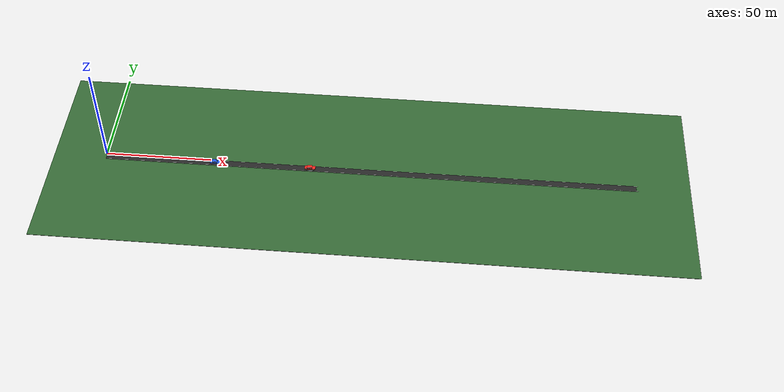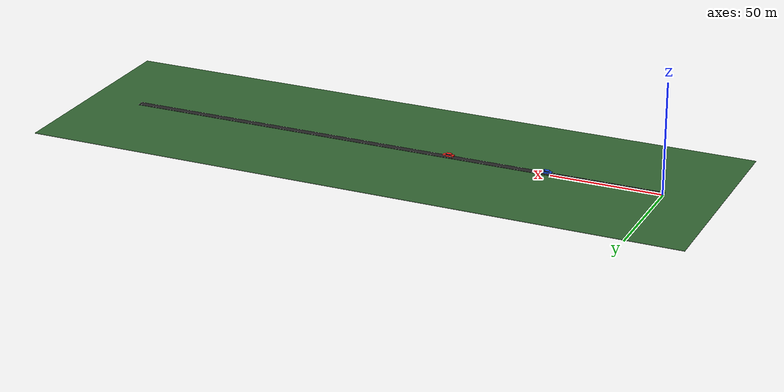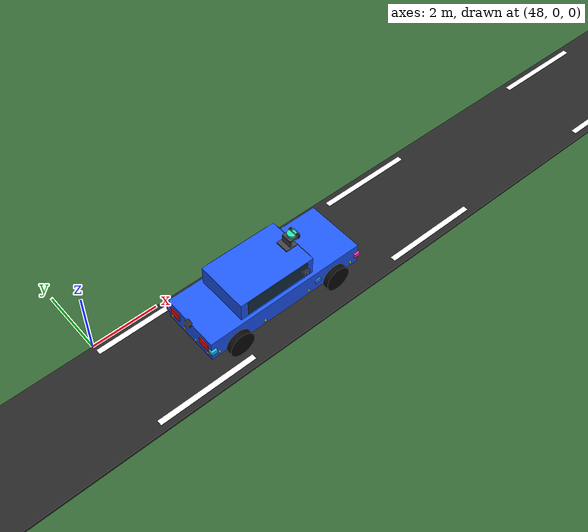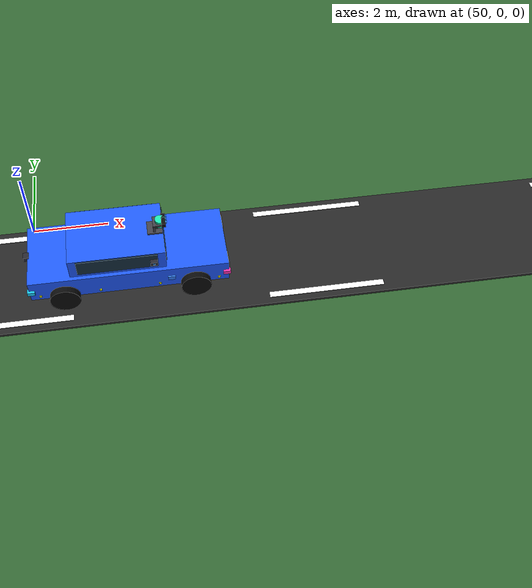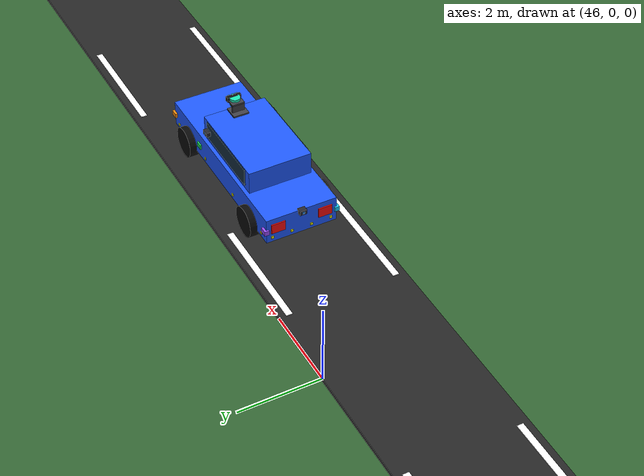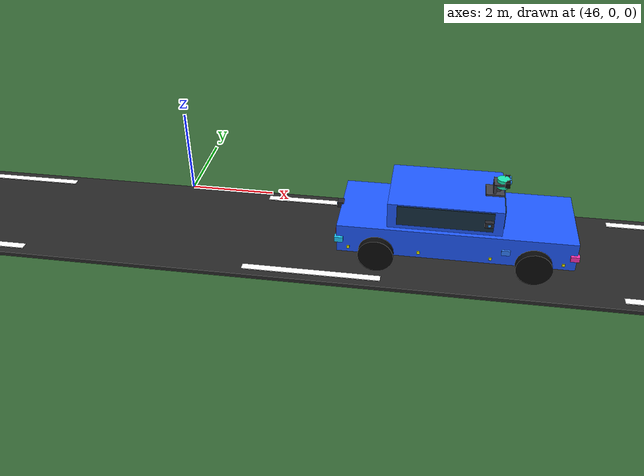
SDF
<?xml version='1.0' encoding='utf-8'?>
<sdf version="1.9">
  <world name="cosim_demo">
    <gravity>0 0 0</gravity>
    <physics name="default" type="ignored">
      <max_step_size>0.01</max_step_size>
      <real_time_factor>0</real_time_factor>
    </physics>
    <plugin filename="gz-sim-physics-system" name="gz::sim::systems::Physics" />
    <plugin filename="gz-sim-user-commands-system" name="gz::sim::systems::UserCommands" />
    <plugin filename="gz-sim-scene-broadcaster-system" name="gz::sim::systems::SceneBroadcaster" />
    <plugin filename="libcosim_sensor_render_sync.so" name="SensorRenderSync" />
    <plugin filename="gz-sim-sensors-system" name="gz::sim::systems::Sensors"><render_engine>ogre2</render_engine></plugin>
    <light name="sun" type="directional">
      <pose>0 0 20 0 0 0</pose>
      <diffuse>0.9 0.9 0.9 1</diffuse>
      <direction>-0.3 -0.4 -1</direction>
    </light>
    <model name="road">
      <static>true</static>
      <link name="visuals">
        <visual name="grass">
          <pose>125 -1.6 -0.2 0 0 0</pose>
          <geometry>
            <box>
              <size>300 100 0.2</size>
            </box>
          </geometry>
          <material>
            <ambient>0.2 0.4 0.2 1</ambient>
            <diffuse>0.2 0.4 0.2 1</diffuse>
          </material>
        </visual>
        <visual name="asphalt">
          <pose>125 -1.6 -0.05 0 0 0</pose>
          <geometry>
            <box>
              <size>250 3.2 0.1</size>
            </box>
          </geometry>
          <material>
            <ambient>0.15 0.15 0.15 1</ambient>
            <diffuse>0.15 0.15 0.15 1</diffuse>
          </material>
        </visual>
        <visual name="dash_0_-0.25">
          <pose>1.5 -0.25 0.01 0 0 0</pose>
          <geometry>
            <box>
              <size>3 0.16 0.02</size>
            </box>
          </geometry>
          <material>
            <ambient>1 1 1 1</ambient>
            <diffuse>1 1 1 1</diffuse>
          </material>
        </visual>
        <visual name="dash_8_-0.25">
          <pose>9.5 -0.25 0.01 0 0 0</pose>
          <geometry>
            <box>
              <size>3 0.16 0.02</size>
            </box>
          </geometry>
          <material>
            <ambient>1 1 1 1</ambient>
            <diffuse>1 1 1 1</diffuse>
          </material>
        </visual>
        <visual name="dash_16_-0.25">
          <pose>17.5 -0.25 0.01 0 0 0</pose>
          <geometry>
            <box>
              <size>3 0.16 0.02</size>
            </box>
          </geometry>
          <material>
            <ambient>1 1 1 1</ambient>
            <diffuse>1 1 1 1</diffuse>
          </material>
        </visual>
        <visual name="dash_24_-0.25">
          <pose>25.5 -0.25 0.01 0 0 0</pose>
          <geometry>
            <box>
              <size>3 0.16 0.02</size>
            </box>
          </geometry>
          <material>
            <ambient>1 1 1 1</ambient>
            <diffuse>1 1 1 1</diffuse>
          </material>
        </visual>
        <visual name="dash_32_-0.25">
          <pose>33.5 -0.25 0.01 0 0 0</pose>
          <geometry>
            <box>
              <size>3 0.16 0.02</size>
            </box>
          </geometry>
          <material>
            <ambient>1 1 1 1</ambient>
            <diffuse>1 1 1 1</diffuse>
          </material>
        </visual>
        <visual name="dash_40_-0.25">
          <pose>41.5 -0.25 0.01 0 0 0</pose>
          <geometry>
            <box>
              <size>3 0.16 0.02</size>
            </box>
          </geometry>
          <material>
            <ambient>1 1 1 1</ambient>
            <diffuse>1 1 1 1</diffuse>
          </material>
        </visual>
        <visual name="dash_48_-0.25">
          <pose>49.5 -0.25 0.01 0 0 0</pose>
          <geometry>
            <box>
              <size>3 0.16 0.02</size>
            </box>
          </geometry>
          <material>
            <ambient>1 1 1 1</ambient>
            <diffuse>1 1 1 1</diffuse>
          </material>
        </visual>
        <visual name="dash_56_-0.25">
          <pose>57.5 -0.25 0.01 0 0 0</pose>
          <geometry>
            <box>
              <size>3 0.16 0.02</size>
            </box>
          </geometry>
          <material>
            <ambient>1 1 1 1</ambient>
            <diffuse>1 1 1 1</diffuse>
          </material>
        </visual>
        <visual name="dash_64_-0.25">
          <pose>65.5 -0.25 0.01 0 0 0</pose>
          <geometry>
            <box>
              <size>3 0.16 0.02</size>
            </box>
          </geometry>
          <material>
            <ambient>1 1 1 1</ambient>
            <diffuse>1 1 1 1</diffuse>
          </material>
        </visual>
        <visual name="dash_72_-0.25">
          <pose>73.5 -0.25 0.01 0 0 0</pose>
          <geometry>
            <box>
              <size>3 0.16 0.02</size>
            </box>
          </geometry>
          <material>
            <ambient>1 1 1 1</ambient>
            <diffuse>1 1 1 1</diffuse>
          </material>
        </visual>
        <visual name="dash_80_-0.25">
          <pose>81.5 -0.25 0.01 0 0 0</pose>
          <geometry>
            <box>
              <size>3 0.16 0.02</size>
            </box>
          </geometry>
          <material>
            <ambient>1 1 1 1</ambient>
            <diffuse>1 1 1 1</diffuse>
          </material>
        </visual>
        <visual name="dash_88_-0.25">
          <pose>89.5 -0.25 0.01 0 0 0</pose>
          <geometry>
            <box>
              <size>3 0.16 0.02</size>
            </box>
          </geometry>
          <material>
            <ambient>1 1 1 1</ambient>
            <diffuse>1 1 1 1</diffuse>
          </material>
        </visual>
        <visual name="dash_96_-0.25">
          <pose>97.5 -0.25 0.01 0 0 0</pose>
          <geometry>
            <box>
              <size>3 0.16 0.02</size>
            </box>
          </geometry>
          <material>
            <ambient>1 1 1 1</ambient>
            <diffuse>1 1 1 1</diffuse>
          </material>
        </visual>
        <visual name="dash_104_-0.25">
          <pose>105.5 -0.25 0.01 0 0 0</pose>
          <geometry>
            <box>
              <size>3 0.16 0.02</size>
            </box>
          </geometry>
          <material>
            <ambient>1 1 1 1</ambient>
            <diffuse>1 1 1 1</diffuse>
          </material>
        </visual>
        <visual name="dash_112_-0.25">
          <pose>113.5 -0.25 0.01 0 0 0</pose>
          <geometry>
            <box>
              <size>3 0.16 0.02</size>
            </box>
          </geometry>
          <material>
            <ambient>1 1 1 1</ambient>
            <diffuse>1 1 1 1</diffuse>
          </material>
        </visual>
        <visual name="dash_120_-0.25">
          <pose>121.5 -0.25 0.01 0 0 0</pose>
          <geometry>
            <box>
              <size>3 0.16 0.02</size>
            </box>
          </geometry>
          <material>
            <ambient>1 1 1 1</ambient>
            <diffuse>1 1 1 1</diffuse>
          </material>
        </visual>
        <visual name="dash_128_-0.25">
          <pose>129.5 -0.25 0.01 0 0 0</pose>
          <geometry>
            <box>
              <size>3 0.16 0.02</size>
            </box>
          </geometry>
          <material>
            <ambient>1 1 1 1</ambient>
            <diffuse>1 1 1 1</diffuse>
          </material>
        </visual>
        <visual name="dash_136_-0.25">
          <pose>137.5 -0.25 0.01 0 0 0</pose>
          <geometry>
            <box>
              <size>3 0.16 0.02</size>
            </box>
          </geometry>
          <material>
            <ambient>1 1 1 1</ambient>
            <diffuse>1 1 1 1</diffuse>
          </material>
        </visual>
        <visual name="dash_144_-0.25">
          <pose>145.5 -0.25 0.01 0 0 0</pose>
          <geometry>
            <box>
              <size>3 0.16 0.02</size>
            </box>
          </geometry>
          <material>
            <ambient>1 1 1 1</ambient>
            <diffuse>1 1 1 1</diffuse>
          </material>
        </visual>
        <visual name="dash_152_-0.25">
          <pose>153.5 -0.25 0.01 0 0 0</pose>
          <geometry>
            <box>
              <size>3 0.16 0.02</size>
            </box>
          </geometry>
          <material>
            <ambient>1 1 1 1</ambient>
            <diffuse>1 1 1 1</diffuse>
          </material>
        </visual>
        <visual name="dash_160_-0.25">
          <pose>161.5 -0.25 0.01 0 0 0</pose>
          <geometry>
            <box>
              <size>3 0.16 0.02</size>
            </box>
          </geometry>
          <material>
            <ambient>1 1 1 1</ambient>
            <diffuse>1 1 1 1</diffuse>
          </material>
        </visual>
        <visual name="dash_168_-0.25">
          <pose>169.5 -0.25 0.01 0 0 0</pose>
          <geometry>
            <box>
              <size>3 0.16 0.02</size>
            </box>
          </geometry>
          <material>
            <ambient>1 1 1 1</ambient>
            <diffuse>1 1 1 1</diffuse>
          </material>
        </visual>
        <visual name="dash_176_-0.25">
          <pose>177.5 -0.25 0.01 0 0 0</pose>
          <geometry>
            <box>
              <size>3 0.16 0.02</size>
            </box>
          </geometry>
          <material>
            <ambient>1 1 1 1</ambient>
            <diffuse>1 1 1 1</diffuse>
          </material>
        </visual>
        <visual name="dash_184_-0.25">
          <pose>185.5 -0.25 0.01 0 0 0</pose>
          <geometry>
            <box>
              <size>3 0.16 0.02</size>
            </box>
          </geometry>
          <material>
            <ambient>1 1 1 1</ambient>
            <diffuse>1 1 1 1</diffuse>
          </material>
        </visual>
        <visual name="dash_192_-0.25">
          <pose>193.5 -0.25 0.01 0 0 0</pose>
          <geometry>
            <box>
              <size>3 0.16 0.02</size>
            </box>
          </geometry>
          <material>
            <ambient>1 1 1 1</ambient>
            <diffuse>1 1 1 1</diffuse>
          </material>
        </visual>
        <visual name="dash_200_-0.25">
          <pose>201.5 -0.25 0.01 0 0 0</pose>
          <geometry>
            <box>
              <size>3 0.16 0.02</size>
            </box>
          </geometry>
          <material>
            <ambient>1 1 1 1</ambient>
            <diffuse>1 1 1 1</diffuse>
          </material>
        </visual>
        <visual name="dash_208_-0.25">
          <pose>209.5 -0.25 0.01 0 0 0</pose>
          <geometry>
            <box>
              <size>3 0.16 0.02</size>
            </box>
          </geometry>
          <material>
            <ambient>1 1 1 1</ambient>
            <diffuse>1 1 1 1</diffuse>
          </material>
        </visual>
        <visual name="dash_216_-0.25">
          <pose>217.5 -0.25 0.01 0 0 0</pose>
          <geometry>
            <box>
              <size>3 0.16 0.02</size>
            </box>
          </geometry>
          <material>
            <ambient>1 1 1 1</ambient>
            <diffuse>1 1 1 1</diffuse>
          </material>
        </visual>
        <visual name="dash_224_-0.25">
          <pose>225.5 -0.25 0.01 0 0 0</pose>
          <geometry>
            <box>
              <size>3 0.16 0.02</size>
            </box>
          </geometry>
          <material>
            <ambient>1 1 1 1</ambient>
            <diffuse>1 1 1 1</diffuse>
          </material>
        </visual>
        <visual name="dash_232_-0.25">
          <pose>233.5 -0.25 0.01 0 0 0</pose>
          <geometry>
            <box>
              <size>3 0.16 0.02</size>
            </box>
          </geometry>
          <material>
            <ambient>1 1 1 1</ambient>
            <diffuse>1 1 1 1</diffuse>
          </material>
        </visual>
        <visual name="dash_240_-0.25">
          <pose>241.5 -0.25 0.01 0 0 0</pose>
          <geometry>
            <box>
              <size>3 0.16 0.02</size>
            </box>
          </geometry>
          <material>
            <ambient>1 1 1 1</ambient>
            <diffuse>1 1 1 1</diffuse>
          </material>
        </visual>
        <visual name="dash_248_-0.25">
          <pose>249.5 -0.25 0.01 0 0 0</pose>
          <geometry>
            <box>
              <size>3 0.16 0.02</size>
            </box>
          </geometry>
          <material>
            <ambient>1 1 1 1</ambient>
            <diffuse>1 1 1 1</diffuse>
          </material>
        </visual>
        <visual name="dash_0_-2.95">
          <pose>1.5 -2.95 0.01 0 0 0</pose>
          <geometry>
            <box>
              <size>3 0.16 0.02</size>
            </box>
          </geometry>
          <material>
            <ambient>1 1 1 1</ambient>
            <diffuse>1 1 1 1</diffuse>
          </material>
        </visual>
        <visual name="dash_8_-2.95">
          <pose>9.5 -2.95 0.01 0 0 0</pose>
          <geometry>
            <box>
              <size>3 0.16 0.02</size>
            </box>
          </geometry>
          <material>
            <ambient>1 1 1 1</ambient>
            <diffuse>1 1 1 1</diffuse>
          </material>
        </visual>
        <visual name="dash_16_-2.95">
          <pose>17.5 -2.95 0.01 0 0 0</pose>
          <geometry>
            <box>
              <size>3 0.16 0.02</size>
            </box>
          </geometry>
          <material>
            <ambient>1 1 1 1</ambient>
            <diffuse>1 1 1 1</diffuse>
          </material>
        </visual>
        <visual name="dash_24_-2.95">
          <pose>25.5 -2.95 0.01 0 0 0</pose>
          <geometry>
            <box>
              <size>3 0.16 0.02</size>
            </box>
          </geometry>
          <material>
            <ambient>1 1 1 1</ambient>
            <diffuse>1 1 1 1</diffuse>
          </material>
        </visual>
        <visual name="dash_32_-2.95">
          <pose>33.5 -2.95 0.01 0 0 0</pose>
          <geometry>
            <box>
              <size>3 0.16 0.02</size>
            </box>
          </geometry>
          <material>
            <ambient>1 1 1 1</ambient>
            <diffuse>1 1 1 1</diffuse>
          </material>
        </visual>
        <visual name="dash_40_-2.95">
          <pose>41.5 -2.95 0.01 0 0 0</pose>
          <geometry>
            <box>
              <size>3 0.16 0.02</size>
            </box>
          </geometry>
          <material>
            <ambient>1 1 1 1</ambient>
            <diffuse>1 1 1 1</diffuse>
          </material>
        </visual>
        <visual name="dash_48_-2.95">
          <pose>49.5 -2.95 0.01 0 0 0</pose>
          <geometry>
            <box>
              <size>3 0.16 0.02</size>
            </box>
          </geometry>
          <material>
            <ambient>1 1 1 1</ambient>
            <diffuse>1 1 1 1</diffuse>
          </material>
        </visual>
        <visual name="dash_56_-2.95">
          <pose>57.5 -2.95 0.01 0 0 0</pose>
          <geometry>
            <box>
              <size>3 0.16 0.02</size>
            </box>
          </geometry>
          <material>
            <ambient>1 1 1 1</ambient>
            <diffuse>1 1 1 1</diffuse>
          </material>
        </visual>
        <visual name="dash_64_-2.95">
          <pose>65.5 -2.95 0.01 0 0 0</pose>
          <geometry>
            <box>
              <size>3 0.16 0.02</size>
            </box>
          </geometry>
          <material>
            <ambient>1 1 1 1</ambient>
            <diffuse>1 1 1 1</diffuse>
          </material>
        </visual>
        <visual name="dash_72_-2.95">
          <pose>73.5 -2.95 0.01 0 0 0</pose>
          <geometry>
            <box>
              <size>3 0.16 0.02</size>
            </box>
          </geometry>
          <material>
            <ambient>1 1 1 1</ambient>
            <diffuse>1 1 1 1</diffuse>
          </material>
        </visual>
        <visual name="dash_80_-2.95">
          <pose>81.5 -2.95 0.01 0 0 0</pose>
          <geometry>
            <box>
              <size>3 0.16 0.02</size>
            </box>
          </geometry>
          <material>
            <ambient>1 1 1 1</ambient>
            <diffuse>1 1 1 1</diffuse>
          </material>
        </visual>
        <visual name="dash_88_-2.95">
          <pose>89.5 -2.95 0.01 0 0 0</pose>
          <geometry>
            <box>
              <size>3 0.16 0.02</size>
            </box>
          </geometry>
          <material>
            <ambient>1 1 1 1</ambient>
            <diffuse>1 1 1 1</diffuse>
          </material>
        </visual>
        <visual name="dash_96_-2.95">
          <pose>97.5 -2.95 0.01 0 0 0</pose>
          <geometry>
            <box>
              <size>3 0.16 0.02</size>
            </box>
          </geometry>
          <material>
            <ambient>1 1 1 1</ambient>
            <diffuse>1 1 1 1</diffuse>
          </material>
        </visual>
        <visual name="dash_104_-2.95">
          <pose>105.5 -2.95 0.01 0 0 0</pose>
          <geometry>
            <box>
              <size>3 0.16 0.02</size>
            </box>
          </geometry>
          <material>
            <ambient>1 1 1 1</ambient>
            <diffuse>1 1 1 1</diffuse>
          </material>
        </visual>
        <visual name="dash_112_-2.95">
          <pose>113.5 -2.95 0.01 0 0 0</pose>
          <geometry>
            <box>
              <size>3 0.16 0.02</size>
            </box>
          </geometry>
          <material>
            <ambient>1 1 1 1</ambient>
            <diffuse>1 1 1 1</diffuse>
          </material>
        </visual>
        <visual name="dash_120_-2.95">
          <pose>121.5 -2.95 0.01 0 0 0</pose>
          <geometry>
            <box>
              <size>3 0.16 0.02</size>
            </box>
          </geometry>
          <material>
            <ambient>1 1 1 1</ambient>
            <diffuse>1 1 1 1</diffuse>
          </material>
        </visual>
        <visual name="dash_128_-2.95">
          <pose>129.5 -2.95 0.01 0 0 0</pose>
          <geometry>
            <box>
              <size>3 0.16 0.02</size>
            </box>
          </geometry>
          <material>
            <ambient>1 1 1 1</ambient>
            <diffuse>1 1 1 1</diffuse>
          </material>
        </visual>
        <visual name="dash_136_-2.95">
          <pose>137.5 -2.95 0.01 0 0 0</pose>
          <geometry>
            <box>
              <size>3 0.16 0.02</size>
            </box>
          </geometry>
          <material>
            <ambient>1 1 1 1</ambient>
            <diffuse>1 1 1 1</diffuse>
          </material>
        </visual>
        <visual name="dash_144_-2.95">
          <pose>145.5 -2.95 0.01 0 0 0</pose>
          <geometry>
            <box>
              <size>3 0.16 0.02</size>
            </box>
          </geometry>
          <material>
            <ambient>1 1 1 1</ambient>
            <diffuse>1 1 1 1</diffuse>
          </material>
        </visual>
        <visual name="dash_152_-2.95">
          <pose>153.5 -2.95 0.01 0 0 0</pose>
          <geometry>
            <box>
              <size>3 0.16 0.02</size>
            </box>
          </geometry>
          <material>
            <ambient>1 1 1 1</ambient>
            <diffuse>1 1 1 1</diffuse>
          </material>
        </visual>
        <visual name="dash_160_-2.95">
          <pose>161.5 -2.95 0.01 0 0 0</pose>
          <geometry>
            <box>
              <size>3 0.16 0.02</size>
            </box>
          </geometry>
          <material>
            <ambient>1 1 1 1</ambient>
            <diffuse>1 1 1 1</diffuse>
          </material>
        </visual>
        <visual name="dash_168_-2.95">
          <pose>169.5 -2.95 0.01 0 0 0</pose>
          <geometry>
            <box>
              <size>3 0.16 0.02</size>
            </box>
          </geometry>
          <material>
            <ambient>1 1 1 1</ambient>
            <diffuse>1 1 1 1</diffuse>
          </material>
        </visual>
        <visual name="dash_176_-2.95">
          <pose>177.5 -2.95 0.01 0 0 0</pose>
          <geometry>
            <box>
              <size>3 0.16 0.02</size>
            </box>
          </geometry>
          <material>
            <ambient>1 1 1 1</ambient>
            <diffuse>1 1 1 1</diffuse>
          </material>
        </visual>
        <visual name="dash_184_-2.95">
          <pose>185.5 -2.95 0.01 0 0 0</pose>
          <geometry>
            <box>
              <size>3 0.16 0.02</size>
            </box>
          </geometry>
          <material>
            <ambient>1 1 1 1</ambient>
            <diffuse>1 1 1 1</diffuse>
          </material>
        </visual>
        <visual name="dash_192_-2.95">
          <pose>193.5 -2.95 0.01 0 0 0</pose>
          <geometry>
            <box>
              <size>3 0.16 0.02</size>
            </box>
          </geometry>
          <material>
            <ambient>1 1 1 1</ambient>
            <diffuse>1 1 1 1</diffuse>
          </material>
        </visual>
        <visual name="dash_200_-2.95">
          <pose>201.5 -2.95 0.01 0 0 0</pose>
          <geometry>
            <box>
              <size>3 0.16 0.02</size>
            </box>
          </geometry>
          <material>
            <ambient>1 1 1 1</ambient>
            <diffuse>1 1 1 1</diffuse>
          </material>
        </visual>
        <visual name="dash_208_-2.95">
          <pose>209.5 -2.95 0.01 0 0 0</pose>
          <geometry>
            <box>
              <size>3 0.16 0.02</size>
            </box>
          </geometry>
          <material>
            <ambient>1 1 1 1</ambient>
            <diffuse>1 1 1 1</diffuse>
          </material>
        </visual>
        <visual name="dash_216_-2.95">
          <pose>217.5 -2.95 0.01 0 0 0</pose>
          <geometry>
            <box>
              <size>3 0.16 0.02</size>
            </box>
          </geometry>
          <material>
            <ambient>1 1 1 1</ambient>
            <diffuse>1 1 1 1</diffuse>
          </material>
        </visual>
        <visual name="dash_224_-2.95">
          <pose>225.5 -2.95 0.01 0 0 0</pose>
          <geometry>
            <box>
              <size>3 0.16 0.02</size>
            </box>
          </geometry>
          <material>
            <ambient>1 1 1 1</ambient>
            <diffuse>1 1 1 1</diffuse>
          </material>
        </visual>
        <visual name="dash_232_-2.95">
          <pose>233.5 -2.95 0.01 0 0 0</pose>
          <geometry>
            <box>
              <size>3 0.16 0.02</size>
            </box>
          </geometry>
          <material>
            <ambient>1 1 1 1</ambient>
            <diffuse>1 1 1 1</diffuse>
          </material>
        </visual>
        <visual name="dash_240_-2.95">
          <pose>241.5 -2.95 0.01 0 0 0</pose>
          <geometry>
            <box>
              <size>3 0.16 0.02</size>
            </box>
          </geometry>
          <material>
            <ambient>1 1 1 1</ambient>
            <diffuse>1 1 1 1</diffuse>
          </material>
        </visual>
        <visual name="dash_248_-2.95">
          <pose>249.5 -2.95 0.01 0 0 0</pose>
          <geometry>
            <box>
              <size>3 0.16 0.02</size>
            </box>
          </geometry>
          <material>
            <ambient>1 1 1 1</ambient>
            <diffuse>1 1 1 1</diffuse>
          </material>
        </visual>
      </link>
    </model>
    <include>
      <uri>model://car_a</uri>
      <name>car_a</name>
      <pose>97.5 -1.6 0 0 0 0</pose>
    </include>
    <include>
      <uri>model://car_b</uri>
      <name>car_b</name>
      <pose>52.5 -1.6 0 0 0 0</pose>
    </include>
  </world>
</sdf>

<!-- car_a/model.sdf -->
<sdf version="1.9">
  <model name="car_a">
    <static>true</static>
    <link name="body">
      <visual name="chassis">
        <pose>0 0 0.65 0 0 0</pose>
        <geometry>
          <box>
            <size>5 1.8 0.65</size>
          </box>
        </geometry>
        <material>
          <ambient>1 0.15 0.12 1</ambient>
          <diffuse>1 0.15 0.12 1</diffuse>
        </material>
      </visual>
      <visual name="cabin">
        <pose>-0.25 0 1.2 0 0 0</pose>
        <geometry>
          <box>
            <size>2.4 1.6 0.7</size>
          </box>
        </geometry>
        <material>
          <ambient>1 0.15 0.12 1</ambient>
          <diffuse>1 0.15 0.12 1</diffuse>
        </material>
      </visual>
      <visual name="windshield">
        <pose>0.96 0 1.3 0 0 0</pose>
        <geometry>
          <box>
            <size>0.03 1.35 0.45</size>
          </box>
        </geometry>
        <material>
          <ambient>0.08 0.18 0.25 1</ambient>
          <diffuse>0.08 0.18 0.25 1</diffuse>
        </material>
      </visual>
      <visual name="window-1">
        <pose>-0.25 -0.81 1.3 0 0 0</pose>
        <geometry>
          <box>
            <size>2 0.03 0.45</size>
          </box>
        </geometry>
        <material>
          <ambient>0.08 0.18 0.25 1</ambient>
          <diffuse>0.08 0.18 0.25 1</diffuse>
        </material>
      </visual>
      <visual name="wheel-1.65_-1">
        <pose>-1.65 -0.95 0.38 1.570796 0 0</pose>
        <geometry>
          <cylinder>
            <radius>0.38</radius>
            <length>0.25</length>
          </cylinder>
        </geometry>
        <material>
          <ambient>0.04 0.04 0.04 1</ambient>
          <diffuse>0.04 0.04 0.04 1</diffuse>
        </material>
      </visual>
      <visual name="wheel1.65_-1">
        <pose>1.65 -0.95 0.38 1.570796 0 0</pose>
        <geometry>
          <cylinder>
            <radius>0.38</radius>
            <length>0.25</length>
          </cylinder>
        </geometry>
        <material>
          <ambient>0.04 0.04 0.04 1</ambient>
          <diffuse>0.04 0.04 0.04 1</diffuse>
        </material>
      </visual>
      <visual name="headlight-1">
        <pose>2.51 -0.6 0.7 0 0 0</pose>
        <geometry>
          <box>
            <size>0.04 0.35 0.25</size>
          </box>
        </geometry>
        <material>
          <ambient>1 1 0.8 1</ambient>
          <diffuse>1 1 0.8 1</diffuse>
        </material>
      </visual>
      <visual name="taillight-1">
        <pose>-2.51 -0.6 0.7 0 0 0</pose>
        <geometry>
          <box>
            <size>0.04 0.35 0.25</size>
          </box>
        </geometry>
        <material>
          <ambient>1 0.05 0.05 1</ambient>
          <diffuse>1 0.05 0.05 1</diffuse>
        </material>
      </visual>
      <visual name="window1">
        <pose>-0.25 0.81 1.3 0 0 0</pose>
        <geometry>
          <box>
            <size>2 0.03 0.45</size>
          </box>
        </geometry>
        <material>
          <ambient>0.08 0.18 0.25 1</ambient>
          <diffuse>0.08 0.18 0.25 1</diffuse>
        </material>
      </visual>
      <visual name="wheel-1.65_1">
        <pose>-1.65 0.95 0.38 1.570796 0 0</pose>
        <geometry>
          <cylinder>
            <radius>0.38</radius>
            <length>0.25</length>
          </cylinder>
        </geometry>
        <material>
          <ambient>0.04 0.04 0.04 1</ambient>
          <diffuse>0.04 0.04 0.04 1</diffuse>
        </material>
      </visual>
      <visual name="wheel1.65_1">
        <pose>1.65 0.95 0.38 1.570796 0 0</pose>
        <geometry>
          <cylinder>
            <radius>0.38</radius>
            <length>0.25</length>
          </cylinder>
        </geometry>
        <material>
          <ambient>0.04 0.04 0.04 1</ambient>
          <diffuse>0.04 0.04 0.04 1</diffuse>
        </material>
      </visual>
      <visual name="headlight1">
        <pose>2.51 0.6 0.7 0 0 0</pose>
        <geometry>
          <box>
            <size>0.04 0.35 0.25</size>
          </box>
        </geometry>
        <material>
          <ambient>1 1 0.8 1</ambient>
          <diffuse>1 1 0.8 1</diffuse>
        </material>
      </visual>
      <visual name="taillight1">
        <pose>-2.51 0.6 0.7 0 0 0</pose>
        <geometry>
          <box>
            <size>0.04 0.35 0.25</size>
          </box>
        </geometry>
        <material>
          <ambient>1 0.05 0.05 1</ambient>
          <diffuse>1 0.05 0.05 1</diffuse>
        </material>
      </visual>
    </link>
  </model>
</sdf>

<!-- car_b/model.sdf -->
<sdf version="1.9">
  <model name="car_b">
    <static>true</static>
    <include merge="true"><uri>model://perception_rig</uri></include>
    <include merge="true"><uri>model://corner_radar_rig</uri></include>
    <include merge="true"><uri>model://side_radar_rig</uri></include>
    <include merge="true"><uri>model://surround_camera_rig</uri></include>
    <include merge="true"><uri>model://ultrasonic_rig</uri></include>
    <link name="body">
      <visual name="chassis">
        <pose>0 0 0.65 0 0 0</pose>
        <geometry>
          <box>
            <size>5 1.8 0.65</size>
          </box>
        </geometry>
        <material>
          <ambient>0.12 0.35 1 1</ambient>
          <diffuse>0.12 0.35 1 1</diffuse>
        </material>
      </visual>
      <visual name="cabin">
        <pose>-0.25 0 1.2 0 0 0</pose>
        <geometry>
          <box>
            <size>2.4 1.6 0.7</size>
          </box>
        </geometry>
        <material>
          <ambient>0.12 0.35 1 1</ambient>
          <diffuse>0.12 0.35 1 1</diffuse>
        </material>
      </visual>
      <visual name="windshield">
        <pose>0.96 0 1.3 0 0 0</pose>
        <geometry>
          <box>
            <size>0.03 1.35 0.45</size>
          </box>
        </geometry>
        <material>
          <ambient>0.08 0.18 0.25 1</ambient>
          <diffuse>0.08 0.18 0.25 1</diffuse>
        </material>
      </visual>
      <visual name="window-1">
        <pose>-0.25 -0.81 1.3 0 0 0</pose>
        <geometry>
          <box>
            <size>2 0.03 0.45</size>
          </box>
        </geometry>
        <material>
          <ambient>0.08 0.18 0.25 1</ambient>
          <diffuse>0.08 0.18 0.25 1</diffuse>
        </material>
      </visual>
      <visual name="wheel-1.65_-1">
        <pose>-1.65 -0.95 0.38 1.570796 0 0</pose>
        <geometry>
          <cylinder>
            <radius>0.38</radius>
            <length>0.25</length>
          </cylinder>
        </geometry>
        <material>
          <ambient>0.04 0.04 0.04 1</ambient>
          <diffuse>0.04 0.04 0.04 1</diffuse>
        </material>
      </visual>
      <visual name="wheel1.65_-1">
        <pose>1.65 -0.95 0.38 1.570796 0 0</pose>
        <geometry>
          <cylinder>
            <radius>0.38</radius>
            <length>0.25</length>
          </cylinder>
        </geometry>
        <material>
          <ambient>0.04 0.04 0.04 1</ambient>
          <diffuse>0.04 0.04 0.04 1</diffuse>
        </material>
      </visual>
      <visual name="headlight-1">
        <pose>2.51 -0.6 0.7 0 0 0</pose>
        <geometry>
          <box>
            <size>0.04 0.35 0.25</size>
          </box>
        </geometry>
        <material>
          <ambient>1 1 0.8 1</ambient>
          <diffuse>1 1 0.8 1</diffuse>
        </material>
      </visual>
      <visual name="taillight-1">
        <pose>-2.51 -0.6 0.7 0 0 0</pose>
        <geometry>
          <box>
            <size>0.04 0.35 0.25</size>
          </box>
        </geometry>
        <material>
          <ambient>1 0.05 0.05 1</ambient>
          <diffuse>1 0.05 0.05 1</diffuse>
        </material>
      </visual>
      <visual name="window1">
        <pose>-0.25 0.81 1.3 0 0 0</pose>
        <geometry>
          <box>
            <size>2 0.03 0.45</size>
          </box>
        </geometry>
        <material>
          <ambient>0.08 0.18 0.25 1</ambient>
          <diffuse>0.08 0.18 0.25 1</diffuse>
        </material>
      </visual>
      <visual name="wheel-1.65_1">
        <pose>-1.65 0.95 0.38 1.570796 0 0</pose>
        <geometry>
          <cylinder>
            <radius>0.38</radius>
            <length>0.25</length>
          </cylinder>
        </geometry>
        <material>
          <ambient>0.04 0.04 0.04 1</ambient>
          <diffuse>0.04 0.04 0.04 1</diffuse>
        </material>
      </visual>
      <visual name="wheel1.65_1">
        <pose>1.65 0.95 0.38 1.570796 0 0</pose>
        <geometry>
          <cylinder>
            <radius>0.38</radius>
            <length>0.25</length>
          </cylinder>
        </geometry>
        <material>
          <ambient>0.04 0.04 0.04 1</ambient>
          <diffuse>0.04 0.04 0.04 1</diffuse>
        </material>
      </visual>
      <visual name="headlight1">
        <pose>2.51 0.6 0.7 0 0 0</pose>
        <geometry>
          <box>
            <size>0.04 0.35 0.25</size>
          </box>
        </geometry>
        <material>
          <ambient>1 1 0.8 1</ambient>
          <diffuse>1 1 0.8 1</diffuse>
        </material>
      </visual>
      <visual name="taillight1">
        <pose>-2.51 0.6 0.7 0 0 0</pose>
        <geometry>
          <box>
            <size>0.04 0.35 0.25</size>
          </box>
        </geometry>
        <material>
          <ambient>1 0.05 0.05 1</ambient>
          <diffuse>1 0.05 0.05 1</diffuse>
        </material>
      </visual>
    </link>
  </model>
</sdf>

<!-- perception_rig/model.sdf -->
<sdf version="1.9">
  <!-- 以车辆中心为原点，x 前、y 左、z 上；话题使用 Gazebo 自动模型作用域。 -->
  <model name="perception_rig">
    <static>true</static>
    <link name="sensor_mount">
      <!-- 车顶 z=1.55；底板、支柱与机身相接，不悬空。 -->
      <visual name="mounting_plate">
        <pose>0.75 0 1.57 0 0 0</pose>
        <geometry><box><size>0.38 0.40 0.04</size></box></geometry>
        <material><ambient>0.25 0.25 0.28 1</ambient><diffuse>0.25 0.25 0.28 1</diffuse></material>
      </visual>
      <visual name="lidar_pedestal">
        <pose>0.82 0 1.64 0 0 0</pose>
        <geometry><cylinder><radius>0.06</radius><length>0.18</length></cylinder></geometry>
        <material><ambient>0.25 0.25 0.28 1</ambient><diffuse>0.25 0.25 0.28 1</diffuse></material>
      </visual>
      <visual name="lidar_housing">
        <pose>0.90 0 1.78 0 0 0</pose>
        <geometry><cylinder><radius>0.13</radius><length>0.2</length></cylinder></geometry>
        <material><ambient>0.1 0.9 0.7 1</ambient><diffuse>0.1 0.9 0.7 1</diffuse></material>
      </visual>
      <visual name="camera_pedestal">
        <pose>0.74 0 1.67 0 0 0</pose>
        <geometry><box><size>0.06 0.32 0.24</size></box></geometry>
        <material><ambient>0.25 0.25 0.28 1</ambient><diffuse>0.25 0.25 0.28 1</diffuse></material>
      </visual>
      <visual name="camera_arm">
        <pose>0.86 0 1.79 0 0 0</pose>
        <geometry><box><size>0.30 0.32 0.04</size></box></geometry>
        <material><ambient>0.25 0.25 0.28 1</ambient><diffuse>0.25 0.25 0.28 1</diffuse></material>
      </visual>
      <visual name="camera_housing">
        <pose>0.98 0 1.82 0 0 0</pose>
        <geometry><box><size>0.1 0.36 0.12</size></box></geometry>
        <material><ambient>0.05 0.05 0.05 1</ambient><diffuse>0.05 0.05 0.05 1</diffuse></material>
      </visual>
      <visual name="wide_lens">
        <pose>1.04 0.10 1.85 0 0 0</pose>
        <geometry><box><size>0.04 0.055 0.055</size></box></geometry>
        <material><ambient>0.2 0.6 1 1</ambient><diffuse>0.2 0.6 1 1</diffuse></material>
      </visual>
      <visual name="standard_lens">
        <pose>1.04 0 1.85 0 0 0</pose>
        <geometry><box><size>0.04 0.055 0.055</size></box></geometry>
        <material><ambient>0.2 0.6 1 1</ambient><diffuse>0.2 0.6 1 1</diffuse></material>
      </visual>
      <visual name="tele_lens">
        <pose>1.04 -0.10 1.85 0 0 0</pose>
        <geometry><box><size>0.04 0.055 0.055</size></box></geometry>
        <material><ambient>0.2 0.6 1 1</ambient><diffuse>0.2 0.6 1 1</diffuse></material>
      </visual>
      <sensor name="lidar" type="gpu_lidar">
        <pose>0.90 0 1.85 0 0 0</pose>
        <always_on>true</always_on><update_rate>10</update_rate>
        <lidar>
          <scan>
            <horizontal><samples>720</samples><resolution>1</resolution><min_angle>-1.0471975512</min_angle><max_angle>1.0471975512</max_angle></horizontal>
            <vertical><samples>64</samples><resolution>1</resolution><min_angle>-0.4363323130</min_angle><max_angle>0.2617993878</max_angle></vertical>
          </scan>
          <range><min>0.3</min><max>100</max><resolution>0.01</resolution></range>
        </lidar>
      </sensor>
      <!-- 车顶前缘 x=0.95、顶面 z=1.55；镜头略向前伸且高于顶面。 -->
      <sensor name="wide" type="camera">
        <pose>1.05 0.10 1.85 0 0.1745329252 0</pose>
        <always_on>true</always_on><update_rate>15</update_rate>
        <camera><horizontal_fov>2.3561944902</horizontal_fov><image><width>640</width><height>360</height><format>R8G8B8</format></image><clip><near>0.05</near><far>150</far></clip></camera>
      </sensor>
      <sensor name="standard" type="camera">
        <pose>1.05 0 1.85 0 0.0872664626 0</pose>
        <always_on>true</always_on><update_rate>15</update_rate>
        <camera><horizontal_fov>1.0471975512</horizontal_fov><image><width>640</width><height>360</height><format>R8G8B8</format></image><clip><near>0.05</near><far>150</far></clip></camera>
      </sensor>
      <sensor name="tele" type="camera">
        <pose>1.05 -0.10 1.85 0 0 0</pose>
        <always_on>true</always_on><update_rate>15</update_rate>
        <camera><horizontal_fov>0.3490658504</horizontal_fov><image><width>640</width><height>360</height><format>R8G8B8</format></image><clip><near>0.05</near><far>300</far></clip></camera>
      </sensor>
    </link>
  </model>
</sdf>

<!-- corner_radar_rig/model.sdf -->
<sdf version="1.9">
  <!-- x forward, y left, z up; sensor poses are relative to the car base. -->
  <model name="corner_radar_rig">
    <static>true</static>
    <link name="radar_front_left_mount">
      <visual name="front_left_housing">
        <pose>2.45 0.9 0.65 0 0 0</pose>
        <geometry><box><size>0.18 0.12 0.12</size></box></geometry>
        <material><ambient>1 0.55 0.05 1</ambient><diffuse>1 0.55 0.05 1</diffuse></material>
      </visual>
      <!-- Range-ray approximation of a corner radar, not an RF model. -->
      <sensor name="front_left" type="gpu_lidar">
        <pose>2.55 0.97 0.65 0 0 0.7853981634</pose>
        <always_on>true</always_on><update_rate>20</update_rate>
        <lidar>
          <scan>
            <horizontal><samples>240</samples><resolution>1</resolution><min_angle>-1.0471975512</min_angle><max_angle>1.0471975512</max_angle></horizontal>
            <vertical><samples>16</samples><resolution>1</resolution><min_angle>-0.2617993878</min_angle><max_angle>0.2617993878</max_angle></vertical>
          </scan>
          <range><min>0.3</min><max>30</max><resolution>0.05</resolution></range>
        </lidar>
      </sensor>
    </link>
    <link name="radar_front_right_mount">
      <visual name="front_right_housing">
        <pose>2.45 -0.9 0.65 0 0 0</pose>
        <geometry><box><size>0.18 0.12 0.12</size></box></geometry>
        <material><ambient>1 0.2 0.7 1</ambient><diffuse>1 0.2 0.7 1</diffuse></material>
      </visual>
      <!-- Range-ray approximation of a corner radar, not an RF model. -->
      <sensor name="front_right" type="gpu_lidar">
        <pose>2.55 -0.97 0.65 0 0 -0.7853981634</pose>
        <always_on>true</always_on><update_rate>20</update_rate>
        <lidar>
          <scan>
            <horizontal><samples>240</samples><resolution>1</resolution><min_angle>-1.0471975512</min_angle><max_angle>1.0471975512</max_angle></horizontal>
            <vertical><samples>16</samples><resolution>1</resolution><min_angle>-0.2617993878</min_angle><max_angle>0.2617993878</max_angle></vertical>
          </scan>
          <range><min>0.3</min><max>30</max><resolution>0.05</resolution></range>
        </lidar>
      </sensor>
    </link>
    <link name="radar_rear_left_mount">
      <visual name="rear_left_housing">
        <pose>-2.45 0.9 0.65 0 0 0</pose>
        <geometry><box><size>0.18 0.12 0.12</size></box></geometry>
        <material><ambient>0.6 0.3 1 1</ambient><diffuse>0.6 0.3 1 1</diffuse></material>
      </visual>
      <!-- Range-ray approximation of a corner radar, not an RF model. -->
      <sensor name="rear_left" type="gpu_lidar">
        <pose>-2.55 0.97 0.65 0 0 2.3561944902</pose>
        <always_on>true</always_on><update_rate>20</update_rate>
        <lidar>
          <scan>
            <horizontal><samples>240</samples><resolution>1</resolution><min_angle>-1.0471975512</min_angle><max_angle>1.0471975512</max_angle></horizontal>
            <vertical><samples>16</samples><resolution>1</resolution><min_angle>-0.2617993878</min_angle><max_angle>0.2617993878</max_angle></vertical>
          </scan>
          <range><min>0.3</min><max>30</max><resolution>0.05</resolution></range>
        </lidar>
      </sensor>
    </link>
    <link name="radar_rear_right_mount">
      <visual name="rear_right_housing">
        <pose>-2.45 -0.9 0.65 0 0 0</pose>
        <geometry><box><size>0.18 0.12 0.12</size></box></geometry>
        <material><ambient>0.1 0.8 1 1</ambient><diffuse>0.1 0.8 1 1</diffuse></material>
      </visual>
      <!-- Range-ray approximation of a corner radar, not an RF model. -->
      <sensor name="rear_right" type="gpu_lidar">
        <pose>-2.55 -0.97 0.65 0 0 -2.3561944902</pose>
        <always_on>true</always_on><update_rate>20</update_rate>
        <lidar>
          <scan>
            <horizontal><samples>240</samples><resolution>1</resolution><min_angle>-1.0471975512</min_angle><max_angle>1.0471975512</max_angle></horizontal>
            <vertical><samples>16</samples><resolution>1</resolution><min_angle>-0.2617993878</min_angle><max_angle>0.2617993878</max_angle></vertical>
          </scan>
          <range><min>0.3</min><max>30</max><resolution>0.05</resolution></range>
        </lidar>
      </sensor>
    </link>
  </model>
</sdf>

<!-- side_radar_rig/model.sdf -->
<sdf version="1.9">
  <model name="side_radar_rig">
    <static>true</static>
    <link name="radar_side_left_mount">
      <visual name="side_left_housing">
        <pose>1.05 0.88 0.65 0 0 0</pose>
        <geometry>
          <box>
            <size>0.18 0.12 0.12</size>
          </box>
        </geometry>
        <material>
          <ambient>0.1 0.85 0.35 1</ambient>
          <diffuse>0.1 0.85 0.35 1</diffuse>
        </material>
      </visual>
      <sensor name="side_left" type="gpu_lidar">
        <pose>1.05 0.97 0.65 0 0 1.9198621772</pose>
        <always_on>true</always_on>
        <update_rate>20</update_rate>
        <lidar>
          <scan>
            <horizontal>
              <samples>240</samples>
              <resolution>1</resolution>
              <min_angle>-1.0471975512</min_angle>
              <max_angle>1.0471975512</max_angle>
            </horizontal>
            <vertical>
              <samples>16</samples>
              <resolution>1</resolution>
              <min_angle>-0.2617993878</min_angle>
              <max_angle>0.2617993878</max_angle>
            </vertical>
          </scan>
          <range>
            <min>0.3</min>
            <max>30</max>
            <resolution>0.05</resolution>
          </range>
        </lidar>
      </sensor>
    </link>
    <link name="radar_side_right_mount">
      <visual name="side_right_housing">
        <pose>1.05 -0.88 0.65 0 0 0</pose>
        <geometry>
          <box>
            <size>0.18 0.12 0.12</size>
          </box>
        </geometry>
        <material>
          <ambient>0.2 0.5 1 1</ambient>
          <diffuse>0.2 0.5 1 1</diffuse>
        </material>
      </visual>
      <sensor name="side_right" type="gpu_lidar">
        <pose>1.05 -0.97 0.65 0 0 -1.9198621772</pose>
        <always_on>true</always_on>
        <update_rate>20</update_rate>
        <lidar>
          <scan>
            <horizontal>
              <samples>240</samples>
              <resolution>1</resolution>
              <min_angle>-1.0471975512</min_angle>
              <max_angle>1.0471975512</max_angle>
            </horizontal>
            <vertical>
              <samples>16</samples>
              <resolution>1</resolution>
              <min_angle>-0.2617993878</min_angle>
              <max_angle>0.2617993878</max_angle>
            </vertical>
          </scan>
          <range>
            <min>0.3</min>
            <max>30</max>
            <resolution>0.05</resolution>
          </range>
        </lidar>
      </sensor>
    </link>
  </model>
</sdf>

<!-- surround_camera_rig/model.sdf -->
<sdf version="1.9">
  <!-- Identity link pose; camera poses relative to vehicle: x forward, y left, z up. -->
  <model name="surround_camera_rig">
    <static>true</static>
    <link name="surround_camera_mount">
      <!-- Side housings touch the windows; optical origins lie outside the housings. -->
      <visual name="left_housing">
        <pose>0.65 0.87 1.30 0 0 0</pose>
        <geometry><box><size>0.18 0.12 0.12</size></box></geometry>
        <material><ambient>0.15 0.15 0.18 1</ambient><diffuse>0.15 0.15 0.18 1</diffuse></material>
      </visual>
      <visual name="left_lens">
        <pose>0.65 0.93 1.30 0 0 0</pose>
        <geometry><box><size>0.055 0.02 0.055</size></box></geometry>
        <material><ambient>0.2 0.6 1 1</ambient><diffuse>0.2 0.6 1 1</diffuse></material>
      </visual>
      <visual name="right_housing">
        <pose>0.65 -0.87 1.30 0 0 0</pose>
        <geometry><box><size>0.18 0.12 0.12</size></box></geometry>
        <material><ambient>0.15 0.15 0.18 1</ambient><diffuse>0.15 0.15 0.18 1</diffuse></material>
      </visual>
      <visual name="right_lens">
        <pose>0.65 -0.93 1.30 0 0 0</pose>
        <geometry><box><size>0.055 0.02 0.055</size></box></geometry>
        <material><ambient>0.2 0.6 1 1</ambient><diffuse>0.2 0.6 1 1</diffuse></material>
      </visual>
      <visual name="rear_housing">
        <pose>-2.53 0 0.95 0 0 0</pose>
        <geometry><box><size>0.14 0.18 0.12</size></box></geometry>
        <material><ambient>0.15 0.15 0.18 1</ambient><diffuse>0.15 0.15 0.18 1</diffuse></material>
      </visual>
      <visual name="rear_lens">
        <pose>-2.60 0 0.95 0 0 0</pose>
        <geometry><box><size>0.02 0.055 0.055</size></box></geometry>
        <material><ambient>0.2 0.6 1 1</ambient><diffuse>0.2 0.6 1 1</diffuse></material>
      </visual>
      <sensor name="left" type="camera">
        <pose>0.65 0.95 1.30 0 0.2617993878 2.0507618711</pose>
        <always_on>true</always_on><update_rate>15</update_rate>
        <camera><horizontal_fov>2.3561944902</horizontal_fov><image><width>640</width><height>360</height><format>R8G8B8</format></image><clip><near>0.05</near><far>150</far></clip></camera>
      </sensor>
      <sensor name="right" type="camera">
        <pose>0.65 -0.95 1.30 0 0.2617993878 -2.0507618711</pose>
        <always_on>true</always_on><update_rate>15</update_rate>
        <camera><horizontal_fov>2.3561944902</horizontal_fov><image><width>640</width><height>360</height><format>R8G8B8</format></image><clip><near>0.05</near><far>150</far></clip></camera>
      </sensor>
      <sensor name="rear" type="camera">
        <pose>-2.62 0 0.95 0 0 3.1415926536</pose>
        <always_on>true</always_on><update_rate>15</update_rate>
        <camera><horizontal_fov>1.7453292520</horizontal_fov><image><width>640</width><height>360</height><format>R8G8B8</format></image><clip><near>0.05</near><far>150</far></clip></camera>
      </sensor>
    </link>
  </model>
</sdf>

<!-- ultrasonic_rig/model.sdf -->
<sdf version="1.9">
  <model name="ultrasonic_rig">
    <static>true</static>
    <link name="ultrasonic_front_left_outer_mount">
      <visual name="front_left_outer_housing">
        <pose>2.5 0.75 0.45 0 0 0</pose>
        <geometry>
          <box>
            <size>0.04 0.06 0.06</size>
          </box>
        </geometry>
        <material>
          <ambient>1 1 0 1</ambient>
          <diffuse>1 1 0 1</diffuse>
        </material>
      </visual>
      <sensor name="front_left_outer" type="gpu_lidar">
        <pose>2.54 0.75 0.45 0 0 0.6981317008</pose>
        <always_on>true</always_on>
        <update_rate>10</update_rate>
        <lidar>
          <scan>
            <horizontal>
              <samples>80</samples>
              <resolution>1</resolution>
              <min_angle>-0.8726646260</min_angle>
              <max_angle>0.8726646260</max_angle>
            </horizontal>
            <vertical>
              <samples>16</samples>
              <resolution>1</resolution>
              <min_angle>-0.5235987756</min_angle>
              <max_angle>0.5235987756</max_angle>
            </vertical>
          </scan>
          <range>
            <min>0.15</min>
            <max>5</max>
            <resolution>0.01</resolution>
          </range>
        </lidar>
      </sensor>
    </link>
    <link name="ultrasonic_front_left_inner_mount">
      <visual name="front_left_inner_housing">
        <pose>2.5 0.25 0.45 0 0 0</pose>
        <geometry>
          <box>
            <size>0.04 0.06 0.06</size>
          </box>
        </geometry>
        <material>
          <ambient>1 1 0 1</ambient>
          <diffuse>1 1 0 1</diffuse>
        </material>
      </visual>
      <sensor name="front_left_inner" type="gpu_lidar">
        <pose>2.54 0.25 0.45 0 0 0.1745329252</pose>
        <always_on>true</always_on>
        <update_rate>10</update_rate>
        <lidar>
          <scan>
            <horizontal>
              <samples>80</samples>
              <resolution>1</resolution>
              <min_angle>-0.8726646260</min_angle>
              <max_angle>0.8726646260</max_angle>
            </horizontal>
            <vertical>
              <samples>16</samples>
              <resolution>1</resolution>
              <min_angle>-0.5235987756</min_angle>
              <max_angle>0.5235987756</max_angle>
            </vertical>
          </scan>
          <range>
            <min>0.15</min>
            <max>5</max>
            <resolution>0.01</resolution>
          </range>
        </lidar>
      </sensor>
    </link>
    <link name="ultrasonic_front_right_inner_mount">
      <visual name="front_right_inner_housing">
        <pose>2.5 -0.25 0.45 0 0 0</pose>
        <geometry>
          <box>
            <size>0.04 0.06 0.06</size>
          </box>
        </geometry>
        <material>
          <ambient>1 1 0 1</ambient>
          <diffuse>1 1 0 1</diffuse>
        </material>
      </visual>
      <sensor name="front_right_inner" type="gpu_lidar">
        <pose>2.54 -0.25 0.45 0 0 -0.1745329252</pose>
        <always_on>true</always_on>
        <update_rate>10</update_rate>
        <lidar>
          <scan>
            <horizontal>
              <samples>80</samples>
              <resolution>1</resolution>
              <min_angle>-0.8726646260</min_angle>
              <max_angle>0.8726646260</max_angle>
            </horizontal>
            <vertical>
              <samples>16</samples>
              <resolution>1</resolution>
              <min_angle>-0.5235987756</min_angle>
              <max_angle>0.5235987756</max_angle>
            </vertical>
          </scan>
          <range>
            <min>0.15</min>
            <max>5</max>
            <resolution>0.01</resolution>
          </range>
        </lidar>
      </sensor>
    </link>
    <link name="ultrasonic_front_right_outer_mount">
      <visual name="front_right_outer_housing">
        <pose>2.5 -0.75 0.45 0 0 0</pose>
        <geometry>
          <box>
            <size>0.04 0.06 0.06</size>
          </box>
        </geometry>
        <material>
          <ambient>1 1 0 1</ambient>
          <diffuse>1 1 0 1</diffuse>
        </material>
      </visual>
      <sensor name="front_right_outer" type="gpu_lidar">
        <pose>2.54 -0.75 0.45 0 0 -0.6981317008</pose>
        <always_on>true</always_on>
        <update_rate>10</update_rate>
        <lidar>
          <scan>
            <horizontal>
              <samples>80</samples>
              <resolution>1</resolution>
              <min_angle>-0.8726646260</min_angle>
              <max_angle>0.8726646260</max_angle>
            </horizontal>
            <vertical>
              <samples>16</samples>
              <resolution>1</resolution>
              <min_angle>-0.5235987756</min_angle>
              <max_angle>0.5235987756</max_angle>
            </vertical>
          </scan>
          <range>
            <min>0.15</min>
            <max>5</max>
            <resolution>0.01</resolution>
          </range>
        </lidar>
      </sensor>
    </link>
    <link name="ultrasonic_rear_left_outer_mount">
      <visual name="rear_left_outer_housing">
        <pose>-2.5 0.75 0.45 0 0 0</pose>
        <geometry>
          <box>
            <size>0.04 0.06 0.06</size>
          </box>
        </geometry>
        <material>
          <ambient>1 1 0 1</ambient>
          <diffuse>1 1 0 1</diffuse>
        </material>
      </visual>
      <sensor name="rear_left_outer" type="gpu_lidar">
        <pose>-2.54 0.75 0.45 0 0 2.4434609528</pose>
        <always_on>true</always_on>
        <update_rate>10</update_rate>
        <lidar>
          <scan>
            <horizontal>
              <samples>80</samples>
              <resolution>1</resolution>
              <min_angle>-0.8726646260</min_angle>
              <max_angle>0.8726646260</max_angle>
            </horizontal>
            <vertical>
              <samples>16</samples>
              <resolution>1</resolution>
              <min_angle>-0.5235987756</min_angle>
              <max_angle>0.5235987756</max_angle>
            </vertical>
          </scan>
          <range>
            <min>0.15</min>
            <max>5</max>
            <resolution>0.01</resolution>
          </range>
        </lidar>
      </sensor>
    </link>
    <link name="ultrasonic_rear_left_inner_mount">
      <visual name="rear_left_inner_housing">
        <pose>-2.5 0.25 0.45 0 0 0</pose>
        <geometry>
          <box>
            <size>0.04 0.06 0.06</size>
          </box>
        </geometry>
        <material>
          <ambient>1 1 0 1</ambient>
          <diffuse>1 1 0 1</diffuse>
        </material>
      </visual>
      <sensor name="rear_left_inner" type="gpu_lidar">
        <pose>-2.54 0.25 0.45 0 0 2.9670597284</pose>
        <always_on>true</always_on>
        <update_rate>10</update_rate>
        <lidar>
          <scan>
            <horizontal>
              <samples>80</samples>
              <resolution>1</resolution>
              <min_angle>-0.8726646260</min_angle>
              <max_angle>0.8726646260</max_angle>
            </horizontal>
            <vertical>
              <samples>16</samples>
              <resolution>1</resolution>
              <min_angle>-0.5235987756</min_angle>
              <max_angle>0.5235987756</max_angle>
            </vertical>
          </scan>
          <range>
            <min>0.15</min>
            <max>5</max>
            <resolution>0.01</resolution>
          </range>
        </lidar>
      </sensor>
    </link>
    <link name="ultrasonic_rear_right_inner_mount">
      <visual name="rear_right_inner_housing">
        <pose>-2.5 -0.25 0.45 0 0 0</pose>
        <geometry>
          <box>
            <size>0.04 0.06 0.06</size>
          </box>
        </geometry>
        <material>
          <ambient>1 1 0 1</ambient>
          <diffuse>1 1 0 1</diffuse>
        </material>
      </visual>
      <sensor name="rear_right_inner" type="gpu_lidar">
        <pose>-2.54 -0.25 0.45 0 0 3.3161255788</pose>
        <always_on>true</always_on>
        <update_rate>10</update_rate>
        <lidar>
          <scan>
            <horizontal>
              <samples>80</samples>
              <resolution>1</resolution>
              <min_angle>-0.8726646260</min_angle>
              <max_angle>0.8726646260</max_angle>
            </horizontal>
            <vertical>
              <samples>16</samples>
              <resolution>1</resolution>
              <min_angle>-0.5235987756</min_angle>
              <max_angle>0.5235987756</max_angle>
            </vertical>
          </scan>
          <range>
            <min>0.15</min>
            <max>5</max>
            <resolution>0.01</resolution>
          </range>
        </lidar>
      </sensor>
    </link>
    <link name="ultrasonic_rear_right_outer_mount">
      <visual name="rear_right_outer_housing">
        <pose>-2.5 -0.75 0.45 0 0 0</pose>
        <geometry>
          <box>
            <size>0.04 0.06 0.06</size>
          </box>
        </geometry>
        <material>
          <ambient>1 1 0 1</ambient>
          <diffuse>1 1 0 1</diffuse>
        </material>
      </visual>
      <sensor name="rear_right_outer" type="gpu_lidar">
        <pose>-2.54 -0.75 0.45 0 0 3.8397243544</pose>
        <always_on>true</always_on>
        <update_rate>10</update_rate>
        <lidar>
          <scan>
            <horizontal>
              <samples>80</samples>
              <resolution>1</resolution>
              <min_angle>-0.8726646260</min_angle>
              <max_angle>0.8726646260</max_angle>
            </horizontal>
            <vertical>
              <samples>16</samples>
              <resolution>1</resolution>
              <min_angle>-0.5235987756</min_angle>
              <max_angle>0.5235987756</max_angle>
            </vertical>
          </scan>
          <range>
            <min>0.15</min>
            <max>5</max>
            <resolution>0.01</resolution>
          </range>
        </lidar>
      </sensor>
    </link>
    <link name="ultrasonic_side_left_front_mount">
      <visual name="side_left_front_housing">
        <pose>2.25 0.9 0.45 0 0 0</pose>
        <geometry>
          <box>
            <size>0.06 0.04 0.06</size>
          </box>
        </geometry>
        <material>
          <ambient>1 1 0 1</ambient>
          <diffuse>1 1 0 1</diffuse>
        </material>
      </visual>
      <sensor name="side_left_front" type="gpu_lidar">
        <pose>2.25 0.94 0.45 0 0 1.3089969390</pose>
        <always_on>true</always_on>
        <update_rate>10</update_rate>
        <lidar>
          <scan>
            <horizontal>
              <samples>80</samples>
              <resolution>1</resolution>
              <min_angle>-0.8726646260</min_angle>
              <max_angle>0.8726646260</max_angle>
            </horizontal>
            <vertical>
              <samples>16</samples>
              <resolution>1</resolution>
              <min_angle>-0.5235987756</min_angle>
              <max_angle>0.5235987756</max_angle>
            </vertical>
          </scan>
          <range>
            <min>0.15</min>
            <max>5</max>
            <resolution>0.01</resolution>
          </range>
        </lidar>
      </sensor>
    </link>
    <link name="ultrasonic_side_left_mid_front_mount">
      <visual name="side_left_mid_front_housing">
        <pose>0.75 0.9 0.45 0 0 0</pose>
        <geometry>
          <box>
            <size>0.06 0.04 0.06</size>
          </box>
        </geometry>
        <material>
          <ambient>1 1 0 1</ambient>
          <diffuse>1 1 0 1</diffuse>
        </material>
      </visual>
      <sensor name="side_left_mid_front" type="gpu_lidar">
        <pose>0.75 0.94 0.45 0 0 1.5707963268</pose>
        <always_on>true</always_on>
        <update_rate>10</update_rate>
        <lidar>
          <scan>
            <horizontal>
              <samples>80</samples>
              <resolution>1</resolution>
              <min_angle>-0.8726646260</min_angle>
              <max_angle>0.8726646260</max_angle>
            </horizontal>
            <vertical>
              <samples>16</samples>
              <resolution>1</resolution>
              <min_angle>-0.5235987756</min_angle>
              <max_angle>0.5235987756</max_angle>
            </vertical>
          </scan>
          <range>
            <min>0.15</min>
            <max>5</max>
            <resolution>0.01</resolution>
          </range>
        </lidar>
      </sensor>
    </link>
    <link name="ultrasonic_side_left_mid_rear_mount">
      <visual name="side_left_mid_rear_housing">
        <pose>-0.75 0.9 0.45 0 0 0</pose>
        <geometry>
          <box>
            <size>0.06 0.04 0.06</size>
          </box>
        </geometry>
        <material>
          <ambient>1 1 0 1</ambient>
          <diffuse>1 1 0 1</diffuse>
        </material>
      </visual>
      <sensor name="side_left_mid_rear" type="gpu_lidar">
        <pose>-0.75 0.94 0.45 0 0 1.5707963268</pose>
        <always_on>true</always_on>
        <update_rate>10</update_rate>
        <lidar>
          <scan>
            <horizontal>
              <samples>80</samples>
              <resolution>1</resolution>
              <min_angle>-0.8726646260</min_angle>
              <max_angle>0.8726646260</max_angle>
            </horizontal>
            <vertical>
              <samples>16</samples>
              <resolution>1</resolution>
              <min_angle>-0.5235987756</min_angle>
              <max_angle>0.5235987756</max_angle>
            </vertical>
          </scan>
          <range>
            <min>0.15</min>
            <max>5</max>
            <resolution>0.01</resolution>
          </range>
        </lidar>
      </sensor>
    </link>
    <link name="ultrasonic_side_left_rear_mount">
      <visual name="side_left_rear_housing">
        <pose>-2.25 0.9 0.45 0 0 0</pose>
        <geometry>
          <box>
            <size>0.06 0.04 0.06</size>
          </box>
        </geometry>
        <material>
          <ambient>1 1 0 1</ambient>
          <diffuse>1 1 0 1</diffuse>
        </material>
      </visual>
      <sensor name="side_left_rear" type="gpu_lidar">
        <pose>-2.25 0.94 0.45 0 0 1.8325957146</pose>
        <always_on>true</always_on>
        <update_rate>10</update_rate>
        <lidar>
          <scan>
            <horizontal>
              <samples>80</samples>
              <resolution>1</resolution>
              <min_angle>-0.8726646260</min_angle>
              <max_angle>0.8726646260</max_angle>
            </horizontal>
            <vertical>
              <samples>16</samples>
              <resolution>1</resolution>
              <min_angle>-0.5235987756</min_angle>
              <max_angle>0.5235987756</max_angle>
            </vertical>
          </scan>
          <range>
            <min>0.15</min>
            <max>5</max>
            <resolution>0.01</resolution>
          </range>
        </lidar>
      </sensor>
    </link>
    <link name="ultrasonic_side_right_front_mount">
      <visual name="side_right_front_housing">
        <pose>2.25 -0.9 0.45 0 0 0</pose>
        <geometry>
          <box>
            <size>0.06 0.04 0.06</size>
          </box>
        </geometry>
        <material>
          <ambient>1 1 0 1</ambient>
          <diffuse>1 1 0 1</diffuse>
        </material>
      </visual>
      <sensor name="side_right_front" type="gpu_lidar">
        <pose>2.25 -0.94 0.45 0 0 -1.3089969390</pose>
        <always_on>true</always_on>
        <update_rate>10</update_rate>
        <lidar>
          <scan>
            <horizontal>
              <samples>80</samples>
              <resolution>1</resolution>
              <min_angle>-0.8726646260</min_angle>
              <max_angle>0.8726646260</max_angle>
            </horizontal>
            <vertical>
              <samples>16</samples>
              <resolution>1</resolution>
              <min_angle>-0.5235987756</min_angle>
              <max_angle>0.5235987756</max_angle>
            </vertical>
          </scan>
          <range>
            <min>0.15</min>
            <max>5</max>
            <resolution>0.01</resolution>
          </range>
        </lidar>
      </sensor>
    </link>
    <link name="ultrasonic_side_right_mid_front_mount">
      <visual name="side_right_mid_front_housing">
        <pose>0.75 -0.9 0.45 0 0 0</pose>
        <geometry>
          <box>
            <size>0.06 0.04 0.06</size>
          </box>
        </geometry>
        <material>
          <ambient>1 1 0 1</ambient>
          <diffuse>1 1 0 1</diffuse>
        </material>
      </visual>
      <sensor name="side_right_mid_front" type="gpu_lidar">
        <pose>0.75 -0.94 0.45 0 0 -1.5707963268</pose>
        <always_on>true</always_on>
        <update_rate>10</update_rate>
        <lidar>
          <scan>
            <horizontal>
              <samples>80</samples>
              <resolution>1</resolution>
              <min_angle>-0.8726646260</min_angle>
              <max_angle>0.8726646260</max_angle>
            </horizontal>
            <vertical>
              <samples>16</samples>
              <resolution>1</resolution>
              <min_angle>-0.5235987756</min_angle>
              <max_angle>0.5235987756</max_angle>
            </vertical>
          </scan>
          <range>
            <min>0.15</min>
            <max>5</max>
            <resolution>0.01</resolution>
          </range>
        </lidar>
      </sensor>
    </link>
    <link name="ultrasonic_side_right_mid_rear_mount">
      <visual name="side_right_mid_rear_housing">
        <pose>-0.75 -0.9 0.45 0 0 0</pose>
        <geometry>
          <box>
            <size>0.06 0.04 0.06</size>
          </box>
        </geometry>
        <material>
          <ambient>1 1 0 1</ambient>
          <diffuse>1 1 0 1</diffuse>
        </material>
      </visual>
      <sensor name="side_right_mid_rear" type="gpu_lidar">
        <pose>-0.75 -0.94 0.45 0 0 -1.5707963268</pose>
        <always_on>true</always_on>
        <update_rate>10</update_rate>
        <lidar>
          <scan>
            <horizontal>
              <samples>80</samples>
              <resolution>1</resolution>
              <min_angle>-0.8726646260</min_angle>
              <max_angle>0.8726646260</max_angle>
            </horizontal>
            <vertical>
              <samples>16</samples>
              <resolution>1</resolution>
              <min_angle>-0.5235987756</min_angle>
              <max_angle>0.5235987756</max_angle>
            </vertical>
          </scan>
          <range>
            <min>0.15</min>
            <max>5</max>
            <resolution>0.01</resolution>
          </range>
        </lidar>
      </sensor>
    </link>
    <link name="ultrasonic_side_right_rear_mount">
      <visual name="side_right_rear_housing">
        <pose>-2.25 -0.9 0.45 0 0 0</pose>
        <geometry>
          <box>
            <size>0.06 0.04 0.06</size>
          </box>
        </geometry>
        <material>
          <ambient>1 1 0 1</ambient>
          <diffuse>1 1 0 1</diffuse>
        </material>
      </visual>
      <sensor name="side_right_rear" type="gpu_lidar">
        <pose>-2.25 -0.94 0.45 0 0 -1.8325957146</pose>
        <always_on>true</always_on>
        <update_rate>10</update_rate>
        <lidar>
          <scan>
            <horizontal>
              <samples>80</samples>
              <resolution>1</resolution>
              <min_angle>-0.8726646260</min_angle>
              <max_angle>0.8726646260</max_angle>
            </horizontal>
            <vertical>
              <samples>16</samples>
              <resolution>1</resolution>
              <min_angle>-0.5235987756</min_angle>
              <max_angle>0.5235987756</max_angle>
            </vertical>
          </scan>
          <range>
            <min>0.15</min>
            <max>5</max>
            <resolution>0.01</resolution>
          </range>
        </lidar>
      </sensor>
    </link>
  </model>
</sdf>
